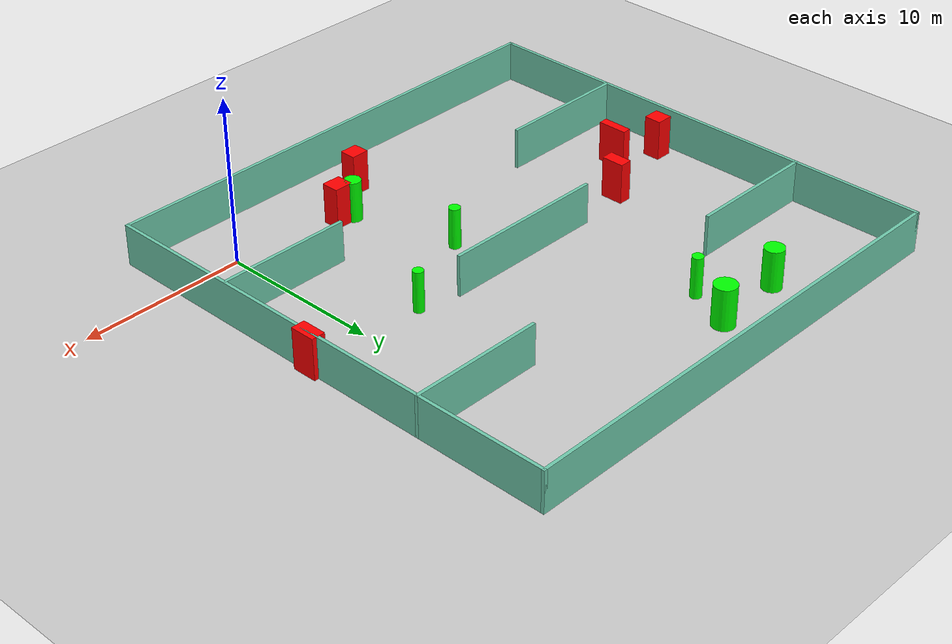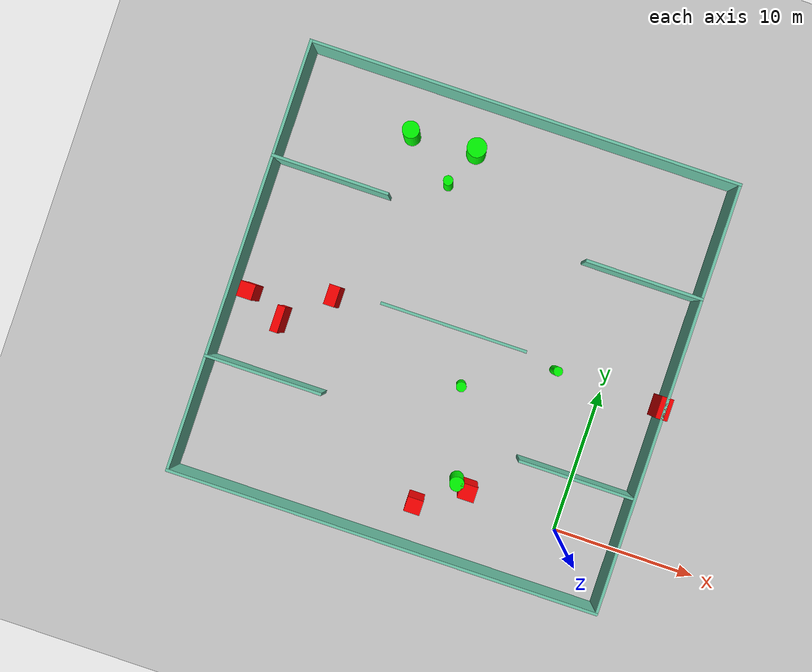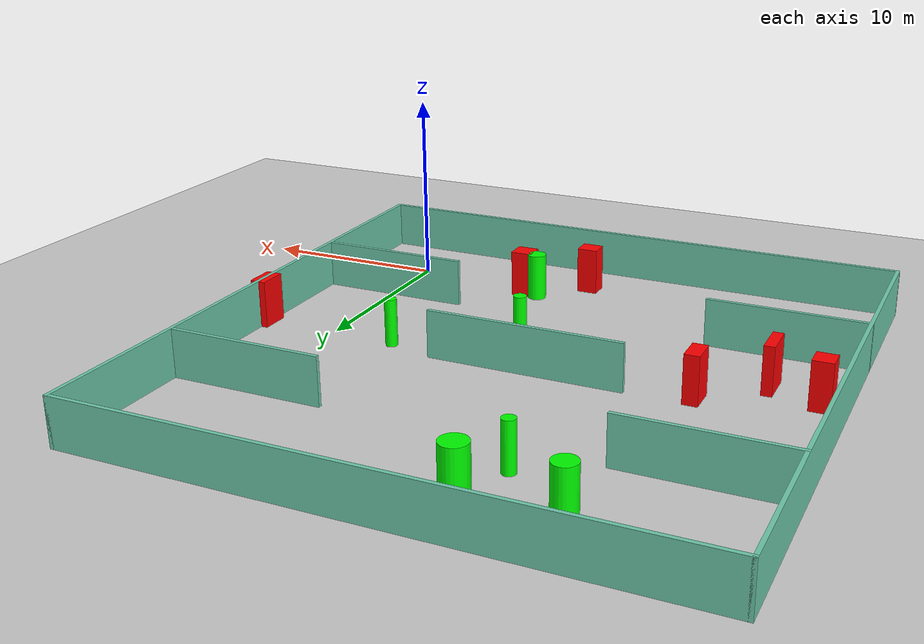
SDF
<sdf version="1.7">
 <world name="default">
  <light name="sun" type="directional">
   <pose>0 0 10 0 -0 0</pose>
   <diffuse>0.8 0.8 0.8 1</diffuse>
   <specular>0.2 0.2 0.2 1</specular>
   <attenuation>
    <range>1000</range>
    <constant>0.9</constant>
    <linear>0.01</linear>
    <quadratic>0.001</quadratic>
   </attenuation>
   <direction>-0.5 0.1 -0.9</direction>
   <spot><inner_angle>0</inner_angle><outer_angle>0</outer_angle><falloff>0</falloff></spot>
  </light>
  <model name="ground_plane">
   <static>1</static>
   <link name="link">
    <collision name="collision">
     <geometry><plane><normal>0 0 1</normal><size>100 100</size></plane></geometry>
     <surface>
      <contact><collide_bitmask>65535</collide_bitmask></contact>
      <friction><ode><mu>100</mu><mu2>50</mu2></ode></friction>
     </surface>
    </collision>
    <visual name="visual">
     <cast_shadows>0</cast_shadows>
     <geometry><plane><normal>0 0 1</normal><size>100 100</size></plane></geometry>
     <material>
      <script><uri>file://media/materials/scripts/gazebo.material</uri><name>Gazebo/Grey</name></script>
     </material>
    </visual>
   </link>
  </model>
  <gravity>0 0 -9.8</gravity>
  <magnetic_field>6e-06 2.3e-05 -4.2e-05</magnetic_field>
  <atmosphere type="adiabatic"/>
  <physics type="ode">
   <max_step_size>0.001</max_step_size>
   <real_time_factor>1</real_time_factor>
   <real_time_update_rate>1000</real_time_update_rate>
  </physics>
  <scene><ambient>0.4 0.4 0.4 1</ambient><background>0.7 0.7 0.7 1</background><shadows>1</shadows></scene>
  <spherical_coordinates>
   <surface_model>EARTH_WGS84</surface_model>
   <latitude_deg>0</latitude_deg>
   <longitude_deg>0</longitude_deg>
   <elevation>0</elevation>
   <heading_deg>0</heading_deg>
  </spherical_coordinates>
  <model name="my_base_walls">
   <link name="Wall_10">
    <collision name="Wall_10_Collision">
     <geometry><box><size>8.2 0.2 2.5</size></box></geometry>
     <pose>0 0 1.25 0 -0 0</pose>
    </collision>
    <visual name="Wall_10_Visual">
     <pose>0 0 1.25 0 -0 0</pose>
     <geometry><box><size>8.2 0.2 2.5</size></box></geometry>
     <material>
      <script><uri>file://media/materials/scripts/gazebo.material</uri><name>Gazebo/Grey</name></script>
      <ambient>0.435294 0.796078 0.67451 1</ambient>
     </material>
     <meta><layer>0</layer></meta>
    </visual>
    <pose>-11 -7 0 0 -0 0</pose>
   </link>
   <link name="Wall_12">
    <collision name="Wall_12_Collision">
     <geometry><box><size>8.2 0.2 2.5</size></box></geometry>
     <pose>0 0 1.25 0 -0 0</pose>
    </collision>
    <visual name="Wall_12_Visual">
     <pose>0 0 1.25 0 -0 0</pose>
     <geometry><box><size>8.2 0.2 2.5</size></box></geometry>
     <material>
      <script><uri>file://media/materials/scripts/gazebo.material</uri><name>Gazebo/Grey</name></script>
      <ambient>0.435294 0.796078 0.67451 1</ambient>
     </material>
     <meta><layer>0</layer></meta>
    </visual>
    <pose>-11 7 0 0 -0 0</pose>
   </link>
   <link name="Wall_14">
    <collision name="Wall_14_Collision">
     <geometry><box><size>8.2 0.2 2.5</size></box></geometry>
     <pose>0 0 1.25 0 -0 0</pose>
    </collision>
    <visual name="Wall_14_Visual">
     <pose>0 0 1.25 0 -0 0</pose>
     <geometry><box><size>8.2 0.2 2.5</size></box></geometry>
     <material>
      <script><uri>file://media/materials/scripts/gazebo.material</uri><name>Gazebo/Grey</name></script>
      <ambient>0.435294 0.796078 0.67451 1</ambient>
     </material>
     <meta><layer>0</layer></meta>
    </visual>
    <pose>11 7 0 0 -0 3.14159</pose>
   </link>
   <link name="Wall_16">
    <collision name="Wall_16_Collision">
     <geometry><box><size>10.2 0.2 2.5</size></box></geometry>
     <pose>0 0 1.25 0 -0 0</pose>
    </collision>
    <visual name="Wall_16_Visual">
     <pose>0 0 1.25 0 -0 0</pose>
     <geometry><box><size>10.2 0.2 2.5</size></box></geometry>
     <material>
      <script><uri>file://media/materials/scripts/gazebo.material</uri><name>Gazebo/Grey</name></script>
      <ambient>0.435294 0.796078 0.67451 1</ambient>
     </material>
     <meta><layer>0</layer></meta>
    </visual>
    <pose>0 0 0 0 -0 3.14159</pose>
   </link>
   <link name="Wall_2">
    <collision name="Wall_2_Collision">
     <geometry><box><size>30.2 0.2 2.5</size></box></geometry>
     <pose>0 0 1.25 0 -0 0</pose>
    </collision>
    <visual name="Wall_2_Visual">
     <pose>0 0 1.25 0 -0 0</pose>
     <geometry><box><size>30.2 0.2 2.5</size></box></geometry>
     <material>
      <script><uri>file://media/materials/scripts/gazebo.material</uri><name>Gazebo/Grey</name></script>
      <ambient>0.435294 0.796078 0.67451 1</ambient>
     </material>
     <meta><layer>0</layer></meta>
    </visual>
    <pose>0 -15 0 0 -0 3.14159</pose>
   </link>
   <link name="Wall_3">
    <collision name="Wall_3_Collision">
     <geometry><box><size>30.2 0.2 2.5</size></box></geometry>
     <pose>0 0 1.25 0 -0 0</pose>
    </collision>
    <visual name="Wall_3_Visual">
     <pose>0 0 1.25 0 -0 0</pose>
     <geometry><box><size>30.2 0.2 2.5</size></box></geometry>
     <material>
      <script><uri>file://media/materials/scripts/gazebo.material</uri><name>Gazebo/Grey</name></script>
      <ambient>0.435294 0.796078 0.67451 1</ambient>
     </material>
     <meta><layer>0</layer></meta>
    </visual>
    <pose>-15 0 0 0 -0 1.5708</pose>
   </link>
   <link name="Wall_4">
    <collision name="Wall_4_Collision">
     <geometry><box><size>30.2 0.2 2.5</size></box></geometry>
     <pose>0 0 1.25 0 -0 0</pose>
    </collision>
    <visual name="Wall_4_Visual">
     <pose>0 0 1.25 0 -0 0</pose>
     <geometry><box><size>30.2 0.2 2.5</size></box></geometry>
     <material>
      <script><uri>file://media/materials/scripts/gazebo.material</uri><name>Gazebo/Grey</name></script>
      <ambient>0.435294 0.796078 0.67451 1</ambient>
     </material>
     <meta><layer>0</layer></meta>
    </visual>
    <pose>0 15 0 0 -0 0</pose>
   </link>
   <link name="Wall_6">
    <collision name="Wall_6_Collision">
     <geometry><box><size>30.2 0.2 2.5</size></box></geometry>
     <pose>0 0 1.25 0 -0 0</pose>
    </collision>
    <visual name="Wall_6_Visual">
     <pose>0 0 1.25 0 -0 0</pose>
     <geometry><box><size>30.2 0.2 2.5</size></box></geometry>
     <material>
      <script><uri>file://media/materials/scripts/gazebo.material</uri><name>Gazebo/Grey</name></script>
      <ambient>0.435294 0.796078 0.67451 1</ambient>
     </material>
     <meta><layer>0</layer></meta>
    </visual>
    <pose>15 0 0 0 -0 1.5708</pose>
   </link>
   <link name="Wall_8">
    <collision name="Wall_8_Collision">
     <geometry><box><size>8.2 0.2 2.5</size></box></geometry>
     <pose>0 0 1.25 0 -0 0</pose>
    </collision>
    <visual name="Wall_8_Visual">
     <pose>0 0 1.25 0 -0 0</pose>
     <geometry><box><size>8.2 0.2 2.5</size></box></geometry>
     <material>
      <script><uri>file://media/materials/scripts/gazebo.material</uri><name>Gazebo/Grey</name></script>
      <ambient>0.435294 0.796078 0.67451 1</ambient>
     </material>
     <meta><layer>0</layer></meta>
    </visual>
    <pose>11 -7 0 0 -0 3.14159</pose>
   </link>
   <static>1</static>
   <pose>-11 11 0 0 -0 0</pose>
  </model>
  <model name="cylinder1">
   <static>1</static>
   <link name="link">
    <inertial>
     <mass>1</mass>
     <inertia><ixx>0.5</ixx><ixy>0</ixy><ixz>0</ixz><iyy>0.5</iyy><iyz>0</iyz><izz>1</izz></inertia>
    </inertial>
    <collision name="collision">
     <geometry><cylinder><radius>0.49753998998525306</radius><length>2.5</length></cylinder></geometry>
    </collision>
    <visual name="visual">
     <geometry><cylinder><radius>0.49753998998525306</radius><length>2.5</length></cylinder></geometry>
     <material>
      <ambient>0 1 0 1</ambient>
      <diffuse>0 1 0 1</diffuse>
      <specular>0.1 0.1 0.1 1</specular>
      <emissive>0 0 0 0</emissive>
     </material>
    </visual>
   </link>
   <pose>-7.5031722484260435 1.2366155067629876 1.25 0 0 0</pose>
  </model>
  <model name="cylinder2">
   <static>1</static>
   <link name="link">
    <inertial>
     <mass>1</mass>
     <inertia><ixx>0.5</ixx><ixy>0</ixy><ixz>0</ixz><iyy>0.5</iyy><iyz>0</iyz><izz>1</izz></inertia>
    </inertial>
    <collision name="collision">
     <geometry><cylinder><radius>0.674988140435858</radius><length>2.5</length></cylinder></geometry>
    </collision>
    <visual name="visual">
     <geometry><cylinder><radius>0.674988140435858</radius><length>2.5</length></cylinder></geometry>
     <material>
      <ambient>0 1 0 1</ambient>
      <diffuse>0 1 0 1</diffuse>
      <specular>0.1 0.1 0.1 1</specular>
      <emissive>0 0 0 0</emissive>
     </material>
    </visual>
   </link>
   <pose>-13.333054904451522 22.777811518348997 1.25 0 0 0</pose>
  </model>
  <model name="cylinder3">
   <static>1</static>
   <link name="link">
    <inertial>
     <mass>1</mass>
     <inertia><ixx>0.5</ixx><ixy>0</ixy><ixz>0</ixz><iyy>0.5</iyy><iyz>0</iyz><izz>1</izz></inertia>
    </inertial>
    <collision name="collision">
     <geometry><cylinder><radius>0.5897998701970424</radius><length>2.5</length></cylinder></geometry>
    </collision>
    <visual name="visual">
     <geometry><cylinder><radius>0.5897998701970424</radius><length>2.5</length></cylinder></geometry>
     <material>
      <ambient>0 1 0 1</ambient>
      <diffuse>0 1 0 1</diffuse>
      <specular>0.1 0.1 0.1 1</specular>
      <emissive>0 0 0 0</emissive>
     </material>
    </visual>
   </link>
   <pose>-17.864038601955293 22.51156093369147 1.25 0 0 0</pose>
  </model>
  <model name="cylinder4">
   <static>1</static>
   <link name="link">
    <inertial>
     <mass>1</mass>
     <inertia><ixx>0.5</ixx><ixy>0</ixy><ixz>0</ixz><iyy>0.5</iyy><iyz>0</iyz><izz>1</izz></inertia>
    </inertial>
    <collision name="collision">
     <geometry><cylinder><radius>0.31390652494065885</radius><length>2.5</length></cylinder></geometry>
    </collision>
    <visual name="visual">
     <geometry><cylinder><radius>0.31390652494065885</radius><length>2.5</length></cylinder></geometry>
     <material>
      <ambient>0 1 0 1</ambient>
      <diffuse>0 1 0 1</diffuse>
      <specular>0.1 0.1 0.1 1</specular>
      <emissive>0 0 0 0</emissive>
     </material>
    </visual>
   </link>
   <pose>-3.5190225136273945 10.436083499755757 1.25 0 0 0</pose>
  </model>
  <model name="cylinder5">
   <static>1</static>
   <link name="link">
    <inertial>
     <mass>1</mass>
     <inertia><ixx>0.5</ixx><ixy>0</ixy><ixz>0</ixz><iyy>0.5</iyy><iyz>0</iyz><izz>1</izz></inertia>
    </inertial>
    <collision name="collision">
     <geometry><cylinder><radius>0.33820889844781576</radius><length>2.5</length></cylinder></geometry>
    </collision>
    <visual name="visual">
     <geometry><cylinder><radius>0.33820889844781576</radius><length>2.5</length></cylinder></geometry>
     <material>
      <ambient>0 1 0 1</ambient>
      <diffuse>0 1 0 1</diffuse>
      <specular>0.1 0.1 0.1 1</specular>
      <emissive>0 0 0 0</emissive>
     </material>
    </visual>
   </link>
   <pose>-14.446876152432974 20.104362685406766 1.25 0 0 0</pose>
  </model>
  <model name="cylinder6">
   <static>1</static>
   <link name="link">
    <inertial>
     <mass>1</mass>
     <inertia><ixx>0.5</ixx><ixy>0</ixy><ixz>0</ixz><iyy>0.5</iyy><iyz>0</iyz><izz>1</izz></inertia>
    </inertial>
    <collision name="collision">
     <geometry><cylinder><radius>0.345645348565227</radius><length>2.5</length></cylinder></geometry>
    </collision>
    <visual name="visual">
     <geometry><cylinder><radius>0.345645348565227</radius><length>2.5</length></cylinder></geometry>
     <material>
      <ambient>0 1 0 1</ambient>
      <diffuse>0 1 0 1</diffuse>
      <specular>0.1 0.1 0.1 1</specular>
      <emissive>0 0 0 0</emissive>
     </material>
    </visual>
   </link>
   <pose>-9.269122892524425 7.431122222330266 1.25 0 0 0</pose>
  </model>
  <model name="box1">
   <static>1</static>
   <link name="link">
    <inertial>
     <mass>1</mass>
     <inertia><ixx>0.083</ixx><ixy>0</ixy><ixz>0</ixz><iyy>0.083</iyy><iyz>0</iyz><izz>0.083</izz></inertia>
    </inertial>
    <collision name="collision">
     <geometry><box><size>1.0359685445549625 1.0763123341402232 2.5</size></box></geometry>
    </collision>
    <visual name="visual">
     <geometry><box><size>1.0359685445549625 1.0763123341402232 2.5</size></box></geometry>
     <material>
      <ambient>1 0 0 1</ambient>
      <diffuse>1 0 0 1</diffuse>
      <specular>0.1 0.1 0.1 1</specular>
      <emissive>0 0 0 0</emissive>
     </material>
    </visual>
    <sensor name="my_contact" type="contact">
     <contact><collision>box_collision</collision><topic>__default_topic__</topic></contact>
    </sensor>
   </link>
   <pose>-24.82294866957675 8.95173951906448 1.25 0 0 0</pose>
  </model>
  <model name="box2">
   <static>1</static>
   <link name="link">
    <inertial>
     <mass>1</mass>
     <inertia><ixx>0.083</ixx><ixy>0</ixy><ixz>0</ixz><iyy>0.083</iyy><iyz>0</iyz><izz>0.083</izz></inertia>
    </inertial>
    <collision name="collision">
     <geometry><box><size>1.1492005707319812 1.0687618770908918 2.5</size></box></geometry>
    </collision>
    <visual name="visual">
     <geometry><box><size>1.1492005707319812 1.0687618770908918 2.5</size></box></geometry>
     <material>
      <ambient>1 0 0 1</ambient>
      <diffuse>1 0 0 1</diffuse>
      <specular>0.1 0.1 0.1 1</specular>
      <emissive>0 0 0 0</emissive>
     </material>
    </visual>
    <sensor name="my_contact" type="contact">
     <contact><collision>box_collision</collision><topic>__default_topic__</topic></contact>
    </sensor>
   </link>
   <pose>-6.648810412776539 0.923355721704687 1.25 0 0 0</pose>
  </model>
  <model name="box3">
   <static>1</static>
   <link name="link">
    <inertial>
     <mass>1</mass>
     <inertia><ixx>0.083</ixx><ixy>0</ixy><ixz>0</ixz><iyy>0.083</iyy><iyz>0</iyz><izz>0.083</izz></inertia>
    </inertial>
    <collision name="collision">
     <geometry><box><size>0.8305862557803909 1.518190454120576 2.5</size></box></geometry>
    </collision>
    <visual name="visual">
     <geometry><box><size>0.8305862557803909 1.518190454120576 2.5</size></box></geometry>
     <material>
      <ambient>1 0 0 1</ambient>
      <diffuse>1 0 0 1</diffuse>
      <specular>0.1 0.1 0.1 1</specular>
      <emissive>0 0 0 0</emissive>
     </material>
    </visual>
    <sensor name="my_contact" type="contact">
     <contact><collision>box_collision</collision><topic>__default_topic__</topic></contact>
    </sensor>
   </link>
   <pose>3.961187989662829 10.33625312317391 1.25 0 0 0</pose>
  </model>
  <model name="box4">
   <static>1</static>
   <link name="link">
    <inertial>
     <mass>1</mass>
     <inertia><ixx>0.083</ixx><ixy>0</ixy><ixz>0</ixz><iyy>0.083</iyy><iyz>0</iyz><izz>0.083</izz></inertia>
    </inertial>
    <collision name="collision">
     <geometry><box><size>1.095315586098803 1.000121037904608 2.5</size></box></geometry>
    </collision>
    <visual name="visual">
     <geometry><box><size>1.095315586098803 1.000121037904608 2.5</size></box></geometry>
     <material>
      <ambient>1 0 0 1</ambient>
      <diffuse>1 0 0 1</diffuse>
      <specular>0.1 0.1 0.1 1</specular>
      <emissive>0 0 0 0</emissive>
     </material>
    </visual>
    <sensor name="my_contact" type="contact">
     <contact><collision>box_collision</collision><topic>__default_topic__</topic></contact>
    </sensor>
   </link>
   <pose>-9.760497575592776 -1.0469844214991344 1.25 0 0 0</pose>
  </model>
  <model name="box5">
   <static>1</static>
   <link name="link">
    <inertial>
     <mass>1</mass>
     <inertia><ixx>0.083</ixx><ixy>0</ixy><ixz>0</ixz><iyy>0.083</iyy><iyz>0</iyz><izz>0.083</izz></inertia>
    </inertial>
    <collision name="collision">
     <geometry><box><size>0.5414705216562243 1.8176842080480289 2.5</size></box></geometry>
    </collision>
    <visual name="visual">
     <geometry><box><size>0.5414705216562243 1.8176842080480289 2.5</size></box></geometry>
     <material>
      <ambient>1 0 0 1</ambient>
      <diffuse>1 0 0 1</diffuse>
      <specular>0.1 0.1 0.1 1</specular>
      <emissive>0 0 0 0</emissive>
     </material>
    </visual>
    <sensor name="my_contact" type="contact">
     <contact><collision>box_collision</collision><topic>__default_topic__</topic></contact>
    </sensor>
   </link>
   <pose>-22.242019760197923 7.8256041720685445 1.25 0 0 0</pose>
  </model>
  <model name="box6">
   <static>1</static>
   <link name="link">
    <inertial>
     <mass>1</mass>
     <inertia><ixx>0.083</ixx><ixy>0</ixy><ixz>0</ixz><iyy>0.083</iyy><iyz>0</iyz><izz>0.083</izz></inertia>
    </inertial>
    <collision name="collision">
     <geometry><box><size>0.7705085513767577 1.4104356919826133 2.5</size></box></geometry>
    </collision>
    <visual name="visual">
     <geometry><box><size>0.7705085513767577 1.4104356919826133 2.5</size></box></geometry>
     <material>
      <ambient>1 0 0 1</ambient>
      <diffuse>1 0 0 1</diffuse>
      <specular>0.1 0.1 0.1 1</specular>
      <emissive>0 0 0 0</emissive>
     </material>
    </visual>
    <sensor name="my_contact" type="contact">
     <contact><collision>box_collision</collision><topic>__default_topic__</topic></contact>
    </sensor>
   </link>
   <pose>-19.32008853021145 10.433997218407267 1.25 0 0 0</pose>
  </model>
 </world>
</sdf>
